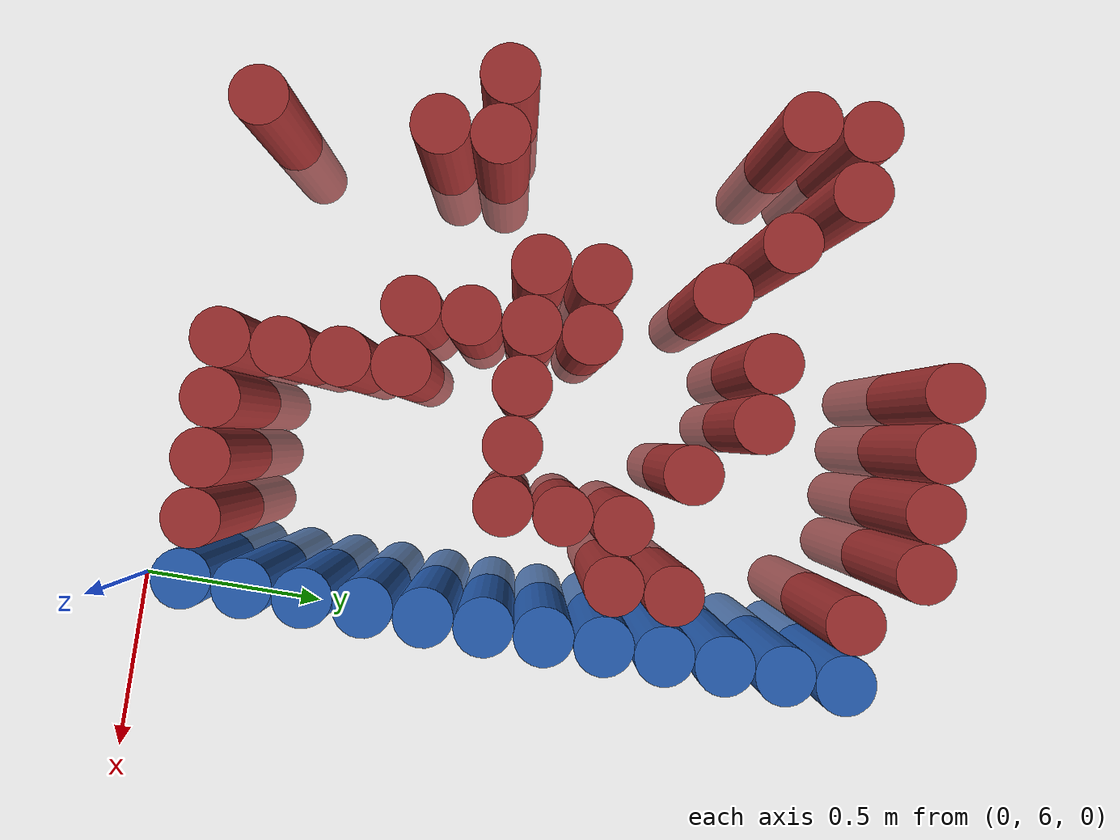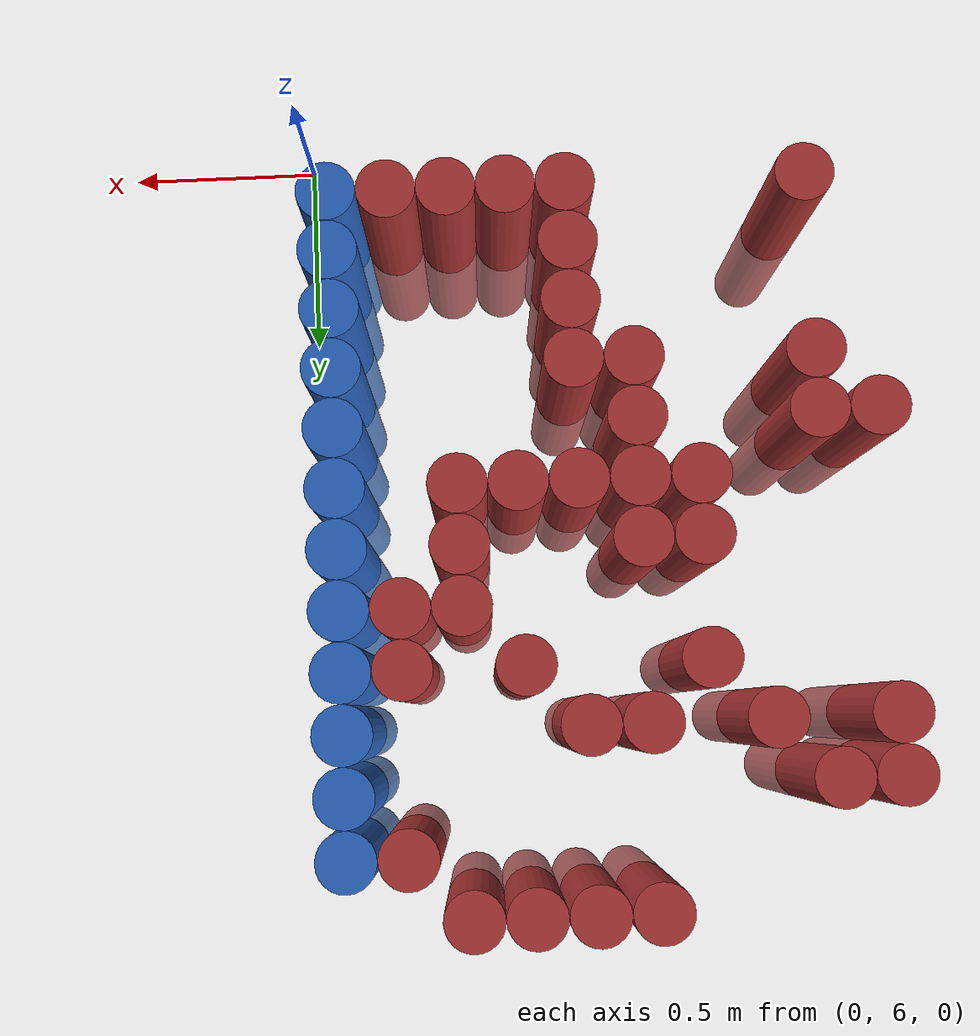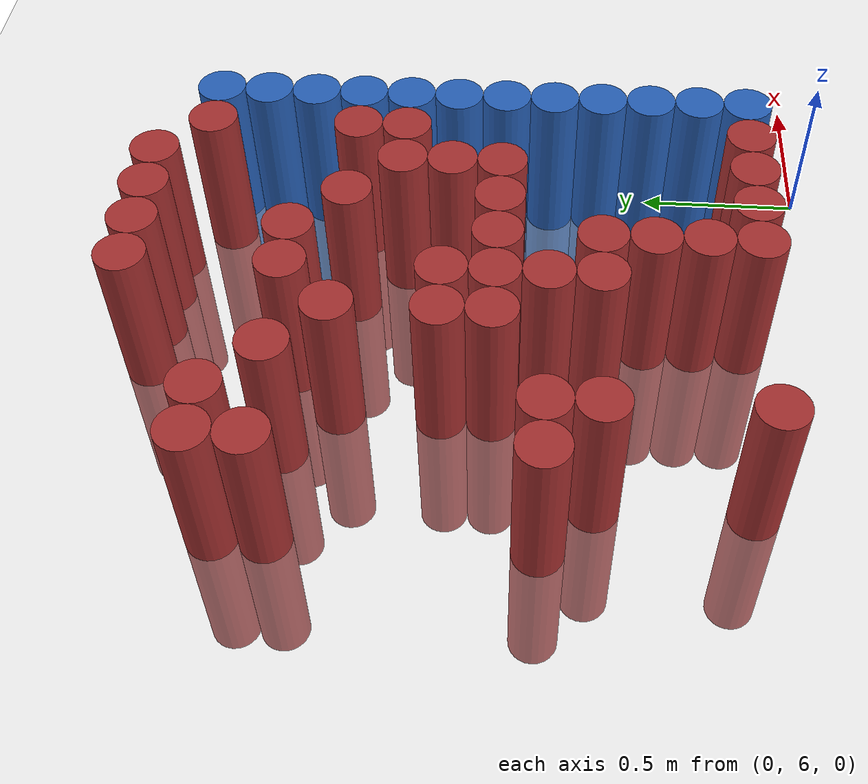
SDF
<sdf version="1.6">
 <world name="default">
  <model name="ground_plane">
   <static>1</static>
   <link name="link">
    <collision name="collision">
     <geometry><plane><normal>0 0 1</normal><size>100 100</size></plane></geometry>
     <surface><friction><ode><mu>100</mu><mu2>50</mu2></ode></friction></surface>
    </collision>
    <visual name="visual">
     <cast_shadows>0</cast_shadows>
     <geometry><plane><normal>0 0 1</normal><size>100 100</size></plane></geometry>
     <material>
      <script><uri>file://media/materials/scripts/gazebo.material</uri><name>Gazebo/Grey</name></script>
     </material>
    </visual>
   </link>
  </model>
  <model name="unit_cylinder_231">
   <static>1</static>
   <pose>-1.425000 6.825000 0.000000 0.000000 0.000000 0.000000</pose>
   <link name="link">
    <inertial>
     <mass>1</mass>
     <inertia><ixx>0.145833</ixx><ixy>0</ixy><ixz>0</ixz><iyy>0.145833</iyy><iyz>0</iyz><izz>0.125</izz></inertia>
    </inertial>
    <collision name="collision">
     <geometry><cylinder><radius>0.075000</radius><length>1</length></cylinder></geometry>
    </collision>
    <visual name="visual">
     <geometry><cylinder><radius>0.075000</radius><length>1</length></cylinder></geometry>
     <material>
      <ambient>0.648000 0.192000 0.192000 1</ambient>
      <diffuse>0.648000 0.192000 0.192000 1</diffuse>
     </material>
     <material>
      <script><name>Gazebo/Grey</name><uri>file://media/materials/scripts/gazebo.material</uri></script>
     </material>
    </visual>
   </link>
  </model>
  <model name="unit_cylinder_232">
   <static>1</static>
   <pose>-1.425000 7.575000 0.000000 0.000000 0.000000 0.000000</pose>
   <link name="link">
    <inertial>
     <mass>1</mass>
     <inertia><ixx>0.145833</ixx><ixy>0</ixy><ixz>0</ixz><iyy>0.145833</iyy><iyz>0</iyz><izz>0.125</izz></inertia>
    </inertial>
    <collision name="collision">
     <geometry><cylinder><radius>0.075000</radius><length>1</length></cylinder></geometry>
    </collision>
    <visual name="visual">
     <geometry><cylinder><radius>0.075000</radius><length>1</length></cylinder></geometry>
     <material>
      <ambient>0.648000 0.192000 0.192000 1</ambient>
      <diffuse>0.648000 0.192000 0.192000 1</diffuse>
     </material>
     <material>
      <script><name>Gazebo/Grey</name><uri>file://media/materials/scripts/gazebo.material</uri></script>
     </material>
    </visual>
   </link>
  </model>
  <model name="unit_cylinder_233">
   <static>1</static>
   <pose>-1.425000 7.725000 0.000000 0.000000 0.000000 0.000000</pose>
   <link name="link">
    <inertial>
     <mass>1</mass>
     <inertia><ixx>0.145833</ixx><ixy>0</ixy><ixz>0</ixz><iyy>0.145833</iyy><iyz>0</iyz><izz>0.125</izz></inertia>
    </inertial>
    <collision name="collision">
     <geometry><cylinder><radius>0.075000</radius><length>1</length></cylinder></geometry>
    </collision>
    <visual name="visual">
     <geometry><cylinder><radius>0.075000</radius><length>1</length></cylinder></geometry>
     <material>
      <ambient>0.648000 0.192000 0.192000 1</ambient>
      <diffuse>0.648000 0.192000 0.192000 1</diffuse>
     </material>
     <material>
      <script><name>Gazebo/Grey</name><uri>file://media/materials/scripts/gazebo.material</uri></script>
     </material>
    </visual>
   </link>
  </model>
  <model name="unit_cylinder_239">
   <static>1</static>
   <pose>-1.275000 6.225000 0.000000 0.000000 0.000000 0.000000</pose>
   <link name="link">
    <inertial>
     <mass>1</mass>
     <inertia><ixx>0.145833</ixx><ixy>0</ixy><ixz>0</ixz><iyy>0.145833</iyy><iyz>0</iyz><izz>0.125</izz></inertia>
    </inertial>
    <collision name="collision">
     <geometry><cylinder><radius>0.075000</radius><length>1</length></cylinder></geometry>
    </collision>
    <visual name="visual">
     <geometry><cylinder><radius>0.075000</radius><length>1</length></cylinder></geometry>
     <material>
      <ambient>0.648000 0.192000 0.192000 1</ambient>
      <diffuse>0.648000 0.192000 0.192000 1</diffuse>
     </material>
     <material>
      <script><name>Gazebo/Grey</name><uri>file://media/materials/scripts/gazebo.material</uri></script>
     </material>
    </visual>
   </link>
  </model>
  <model name="unit_cylinder_240">
   <static>1</static>
   <pose>-1.275000 6.675000 0.000000 0.000000 0.000000 0.000000</pose>
   <link name="link">
    <inertial>
     <mass>1</mass>
     <inertia><ixx>0.145833</ixx><ixy>0</ixy><ixz>0</ixz><iyy>0.145833</iyy><iyz>0</iyz><izz>0.125</izz></inertia>
    </inertial>
    <collision name="collision">
     <geometry><cylinder><radius>0.075000</radius><length>1</length></cylinder></geometry>
    </collision>
    <visual name="visual">
     <geometry><cylinder><radius>0.075000</radius><length>1</length></cylinder></geometry>
     <material>
      <ambient>0.648000 0.192000 0.192000 1</ambient>
      <diffuse>0.648000 0.192000 0.192000 1</diffuse>
     </material>
     <material>
      <script><name>Gazebo/Grey</name><uri>file://media/materials/scripts/gazebo.material</uri></script>
     </material>
    </visual>
   </link>
  </model>
  <model name="unit_cylinder_241">
   <static>1</static>
   <pose>-1.275000 6.825000 0.000000 0.000000 0.000000 0.000000</pose>
   <link name="link">
    <inertial>
     <mass>1</mass>
     <inertia><ixx>0.145833</ixx><ixy>0</ixy><ixz>0</ixz><iyy>0.145833</iyy><iyz>0</iyz><izz>0.125</izz></inertia>
    </inertial>
    <collision name="collision">
     <geometry><cylinder><radius>0.075000</radius><length>1</length></cylinder></geometry>
    </collision>
    <visual name="visual">
     <geometry><cylinder><radius>0.075000</radius><length>1</length></cylinder></geometry>
     <material>
      <ambient>0.648000 0.192000 0.192000 1</ambient>
      <diffuse>0.648000 0.192000 0.192000 1</diffuse>
     </material>
     <material>
      <script><name>Gazebo/Grey</name><uri>file://media/materials/scripts/gazebo.material</uri></script>
     </material>
    </visual>
   </link>
  </model>
  <model name="unit_cylinder_242">
   <static>1</static>
   <pose>-1.275000 7.725000 0.000000 0.000000 0.000000 0.000000</pose>
   <link name="link">
    <inertial>
     <mass>1</mass>
     <inertia><ixx>0.145833</ixx><ixy>0</ixy><ixz>0</ixz><iyy>0.145833</iyy><iyz>0</iyz><izz>0.125</izz></inertia>
    </inertial>
    <collision name="collision">
     <geometry><cylinder><radius>0.075000</radius><length>1</length></cylinder></geometry>
    </collision>
    <visual name="visual">
     <geometry><cylinder><radius>0.075000</radius><length>1</length></cylinder></geometry>
     <material>
      <ambient>0.648000 0.192000 0.192000 1</ambient>
      <diffuse>0.648000 0.192000 0.192000 1</diffuse>
     </material>
     <material>
      <script><name>Gazebo/Grey</name><uri>file://media/materials/scripts/gazebo.material</uri></script>
     </material>
    </visual>
   </link>
  </model>
  <model name="unit_cylinder_247">
   <static>1</static>
   <pose>-1.125000 7.575000 0.000000 0.000000 0.000000 0.000000</pose>
   <link name="link">
    <inertial>
     <mass>1</mass>
     <inertia><ixx>0.145833</ixx><ixy>0</ixy><ixz>0</ixz><iyy>0.145833</iyy><iyz>0</iyz><izz>0.125</izz></inertia>
    </inertial>
    <collision name="collision">
     <geometry><cylinder><radius>0.075000</radius><length>1</length></cylinder></geometry>
    </collision>
    <visual name="visual">
     <geometry><cylinder><radius>0.075000</radius><length>1</length></cylinder></geometry>
     <material>
      <ambient>0.648000 0.192000 0.192000 1</ambient>
      <diffuse>0.648000 0.192000 0.192000 1</diffuse>
     </material>
     <material>
      <script><name>Gazebo/Grey</name><uri>file://media/materials/scripts/gazebo.material</uri></script>
     </material>
    </visual>
   </link>
  </model>
  <model name="unit_cylinder_253">
   <static>1</static>
   <pose>-0.975000 6.975000 0.000000 0.000000 0.000000 0.000000</pose>
   <link name="link">
    <inertial>
     <mass>1</mass>
     <inertia><ixx>0.145833</ixx><ixy>0</ixy><ixz>0</ixz><iyy>0.145833</iyy><iyz>0</iyz><izz>0.125</izz></inertia>
    </inertial>
    <collision name="collision">
     <geometry><cylinder><radius>0.075000</radius><length>1</length></cylinder></geometry>
    </collision>
    <visual name="visual">
     <geometry><cylinder><radius>0.075000</radius><length>1</length></cylinder></geometry>
     <material>
      <ambient>0.648000 0.192000 0.192000 1</ambient>
      <diffuse>0.648000 0.192000 0.192000 1</diffuse>
     </material>
     <material>
      <script><name>Gazebo/Grey</name><uri>file://media/materials/scripts/gazebo.material</uri></script>
     </material>
    </visual>
   </link>
  </model>
  <model name="unit_cylinder_254">
   <static>1</static>
   <pose>-0.975000 7.125000 0.000000 0.000000 0.000000 0.000000</pose>
   <link name="link">
    <inertial>
     <mass>1</mass>
     <inertia><ixx>0.145833</ixx><ixy>0</ixy><ixz>0</ixz><iyy>0.145833</iyy><iyz>0</iyz><izz>0.125</izz></inertia>
    </inertial>
    <collision name="collision">
     <geometry><cylinder><radius>0.075000</radius><length>1</length></cylinder></geometry>
    </collision>
    <visual name="visual">
     <geometry><cylinder><radius>0.075000</radius><length>1</length></cylinder></geometry>
     <material>
      <ambient>0.648000 0.192000 0.192000 1</ambient>
      <diffuse>0.648000 0.192000 0.192000 1</diffuse>
     </material>
     <material>
      <script><name>Gazebo/Grey</name><uri>file://media/materials/scripts/gazebo.material</uri></script>
     </material>
    </visual>
   </link>
  </model>
  <model name="unit_cylinder_255">
   <static>1</static>
   <pose>-0.975000 7.425000 0.000000 0.000000 0.000000 0.000000</pose>
   <link name="link">
    <inertial>
     <mass>1</mass>
     <inertia><ixx>0.145833</ixx><ixy>0</ixy><ixz>0</ixz><iyy>0.145833</iyy><iyz>0</iyz><izz>0.125</izz></inertia>
    </inertial>
    <collision name="collision">
     <geometry><cylinder><radius>0.075000</radius><length>1</length></cylinder></geometry>
    </collision>
    <visual name="visual">
     <geometry><cylinder><radius>0.075000</radius><length>1</length></cylinder></geometry>
     <material>
      <ambient>0.648000 0.192000 0.192000 1</ambient>
      <diffuse>0.648000 0.192000 0.192000 1</diffuse>
     </material>
     <material>
      <script><name>Gazebo/Grey</name><uri>file://media/materials/scripts/gazebo.material</uri></script>
     </material>
    </visual>
   </link>
  </model>
  <model name="unit_cylinder_261">
   <static>1</static>
   <pose>-0.825000 6.675000 0.000000 0.000000 0.000000 0.000000</pose>
   <link name="link">
    <inertial>
     <mass>1</mass>
     <inertia><ixx>0.145833</ixx><ixy>0</ixy><ixz>0</ixz><iyy>0.145833</iyy><iyz>0</iyz><izz>0.125</izz></inertia>
    </inertial>
    <collision name="collision">
     <geometry><cylinder><radius>0.075000</radius><length>1</length></cylinder></geometry>
    </collision>
    <visual name="visual">
     <geometry><cylinder><radius>0.075000</radius><length>1</length></cylinder></geometry>
     <material>
      <ambient>0.648000 0.192000 0.192000 1</ambient>
      <diffuse>0.648000 0.192000 0.192000 1</diffuse>
     </material>
     <material>
      <script><name>Gazebo/Grey</name><uri>file://media/materials/scripts/gazebo.material</uri></script>
     </material>
    </visual>
   </link>
  </model>
  <model name="unit_cylinder_262">
   <static>1</static>
   <pose>-0.825000 6.825000 0.000000 0.000000 0.000000 0.000000</pose>
   <link name="link">
    <inertial>
     <mass>1</mass>
     <inertia><ixx>0.145833</ixx><ixy>0</ixy><ixz>0</ixz><iyy>0.145833</iyy><iyz>0</iyz><izz>0.125</izz></inertia>
    </inertial>
    <collision name="collision">
     <geometry><cylinder><radius>0.075000</radius><length>1</length></cylinder></geometry>
    </collision>
    <visual name="visual">
     <geometry><cylinder><radius>0.075000</radius><length>1</length></cylinder></geometry>
     <material>
      <ambient>0.648000 0.192000 0.192000 1</ambient>
      <diffuse>0.648000 0.192000 0.192000 1</diffuse>
     </material>
     <material>
      <script><name>Gazebo/Grey</name><uri>file://media/materials/scripts/gazebo.material</uri></script>
     </material>
    </visual>
   </link>
  </model>
  <model name="unit_cylinder_263">
   <static>1</static>
   <pose>-0.825000 6.975000 0.000000 0.000000 0.000000 0.000000</pose>
   <link name="link">
    <inertial>
     <mass>1</mass>
     <inertia><ixx>0.145833</ixx><ixy>0</ixy><ixz>0</ixz><iyy>0.145833</iyy><iyz>0</iyz><izz>0.125</izz></inertia>
    </inertial>
    <collision name="collision">
     <geometry><cylinder><radius>0.075000</radius><length>1</length></cylinder></geometry>
    </collision>
    <visual name="visual">
     <geometry><cylinder><radius>0.075000</radius><length>1</length></cylinder></geometry>
     <material>
      <ambient>0.648000 0.192000 0.192000 1</ambient>
      <diffuse>0.648000 0.192000 0.192000 1</diffuse>
     </material>
     <material>
      <script><name>Gazebo/Grey</name><uri>file://media/materials/scripts/gazebo.material</uri></script>
     </material>
    </visual>
   </link>
  </model>
  <model name="unit_cylinder_264">
   <static>1</static>
   <pose>-0.825000 7.125000 0.000000 0.000000 0.000000 0.000000</pose>
   <link name="link">
    <inertial>
     <mass>1</mass>
     <inertia><ixx>0.145833</ixx><ixy>0</ixy><ixz>0</ixz><iyy>0.145833</iyy><iyz>0</iyz><izz>0.125</izz></inertia>
    </inertial>
    <collision name="collision">
     <geometry><cylinder><radius>0.075000</radius><length>1</length></cylinder></geometry>
    </collision>
    <visual name="visual">
     <geometry><cylinder><radius>0.075000</radius><length>1</length></cylinder></geometry>
     <material>
      <ambient>0.648000 0.192000 0.192000 1</ambient>
      <diffuse>0.648000 0.192000 0.192000 1</diffuse>
     </material>
     <material>
      <script><name>Gazebo/Grey</name><uri>file://media/materials/scripts/gazebo.material</uri></script>
     </material>
    </visual>
   </link>
  </model>
  <model name="unit_cylinder_265">
   <static>1</static>
   <pose>-0.825000 7.575000 0.000000 0.000000 0.000000 0.000000</pose>
   <link name="link">
    <inertial>
     <mass>1</mass>
     <inertia><ixx>0.145833</ixx><ixy>0</ixy><ixz>0</ixz><iyy>0.145833</iyy><iyz>0</iyz><izz>0.125</izz></inertia>
    </inertial>
    <collision name="collision">
     <geometry><cylinder><radius>0.075000</radius><length>1</length></cylinder></geometry>
    </collision>
    <visual name="visual">
     <geometry><cylinder><radius>0.075000</radius><length>1</length></cylinder></geometry>
     <material>
      <ambient>0.648000 0.192000 0.192000 1</ambient>
      <diffuse>0.648000 0.192000 0.192000 1</diffuse>
     </material>
     <material>
      <script><name>Gazebo/Grey</name><uri>file://media/materials/scripts/gazebo.material</uri></script>
     </material>
    </visual>
   </link>
  </model>
  <model name="unit_cylinder_266">
   <static>1</static>
   <pose>-0.825000 8.025000 0.000000 0.000000 0.000000 0.000000</pose>
   <link name="link">
    <inertial>
     <mass>1</mass>
     <inertia><ixx>0.145833</ixx><ixy>0</ixy><ixz>0</ixz><iyy>0.145833</iyy><iyz>0</iyz><izz>0.125</izz></inertia>
    </inertial>
    <collision name="collision">
     <geometry><cylinder><radius>0.075000</radius><length>1</length></cylinder></geometry>
    </collision>
    <visual name="visual">
     <geometry><cylinder><radius>0.075000</radius><length>1</length></cylinder></geometry>
     <material>
      <ambient>0.648000 0.192000 0.192000 1</ambient>
      <diffuse>0.648000 0.192000 0.192000 1</diffuse>
     </material>
     <material>
      <script><name>Gazebo/Grey</name><uri>file://media/materials/scripts/gazebo.material</uri></script>
     </material>
    </visual>
   </link>
  </model>
  <model name="unit_cylinder_275">
   <static>1</static>
   <pose>-0.675000 6.225000 0.000000 0.000000 0.000000 0.000000</pose>
   <link name="link">
    <inertial>
     <mass>1</mass>
     <inertia><ixx>0.145833</ixx><ixy>0</ixy><ixz>0</ixz><iyy>0.145833</iyy><iyz>0</iyz><izz>0.125</izz></inertia>
    </inertial>
    <collision name="collision">
     <geometry><cylinder><radius>0.075000</radius><length>1</length></cylinder></geometry>
    </collision>
    <visual name="visual">
     <geometry><cylinder><radius>0.075000</radius><length>1</length></cylinder></geometry>
     <material>
      <ambient>0.648000 0.192000 0.192000 1</ambient>
      <diffuse>0.648000 0.192000 0.192000 1</diffuse>
     </material>
     <material>
      <script><name>Gazebo/Grey</name><uri>file://media/materials/scripts/gazebo.material</uri></script>
     </material>
    </visual>
   </link>
  </model>
  <model name="unit_cylinder_276">
   <static>1</static>
   <pose>-0.675000 6.375000 0.000000 0.000000 0.000000 0.000000</pose>
   <link name="link">
    <inertial>
     <mass>1</mass>
     <inertia><ixx>0.145833</ixx><ixy>0</ixy><ixz>0</ixz><iyy>0.145833</iyy><iyz>0</iyz><izz>0.125</izz></inertia>
    </inertial>
    <collision name="collision">
     <geometry><cylinder><radius>0.075000</radius><length>1</length></cylinder></geometry>
    </collision>
    <visual name="visual">
     <geometry><cylinder><radius>0.075000</radius><length>1</length></cylinder></geometry>
     <material>
      <ambient>0.648000 0.192000 0.192000 1</ambient>
      <diffuse>0.648000 0.192000 0.192000 1</diffuse>
     </material>
     <material>
      <script><name>Gazebo/Grey</name><uri>file://media/materials/scripts/gazebo.material</uri></script>
     </material>
    </visual>
   </link>
  </model>
  <model name="unit_cylinder_277">
   <static>1</static>
   <pose>-0.675000 6.525000 0.000000 0.000000 0.000000 0.000000</pose>
   <link name="link">
    <inertial>
     <mass>1</mass>
     <inertia><ixx>0.145833</ixx><ixy>0</ixy><ixz>0</ixz><iyy>0.145833</iyy><iyz>0</iyz><izz>0.125</izz></inertia>
    </inertial>
    <collision name="collision">
     <geometry><cylinder><radius>0.075000</radius><length>1</length></cylinder></geometry>
    </collision>
    <visual name="visual">
     <geometry><cylinder><radius>0.075000</radius><length>1</length></cylinder></geometry>
     <material>
      <ambient>0.648000 0.192000 0.192000 1</ambient>
      <diffuse>0.648000 0.192000 0.192000 1</diffuse>
     </material>
     <material>
      <script><name>Gazebo/Grey</name><uri>file://media/materials/scripts/gazebo.material</uri></script>
     </material>
    </visual>
   </link>
  </model>
  <model name="unit_cylinder_278">
   <static>1</static>
   <pose>-0.675000 6.675000 0.000000 0.000000 0.000000 0.000000</pose>
   <link name="link">
    <inertial>
     <mass>1</mass>
     <inertia><ixx>0.145833</ixx><ixy>0</ixy><ixz>0</ixz><iyy>0.145833</iyy><iyz>0</iyz><izz>0.125</izz></inertia>
    </inertial>
    <collision name="collision">
     <geometry><cylinder><radius>0.075000</radius><length>1</length></cylinder></geometry>
    </collision>
    <visual name="visual">
     <geometry><cylinder><radius>0.075000</radius><length>1</length></cylinder></geometry>
     <material>
      <ambient>0.648000 0.192000 0.192000 1</ambient>
      <diffuse>0.648000 0.192000 0.192000 1</diffuse>
     </material>
     <material>
      <script><name>Gazebo/Grey</name><uri>file://media/materials/scripts/gazebo.material</uri></script>
     </material>
    </visual>
   </link>
  </model>
  <model name="unit_cylinder_279">
   <static>1</static>
   <pose>-0.675000 6.975000 0.000000 0.000000 0.000000 0.000000</pose>
   <link name="link">
    <inertial>
     <mass>1</mass>
     <inertia><ixx>0.145833</ixx><ixy>0</ixy><ixz>0</ixz><iyy>0.145833</iyy><iyz>0</iyz><izz>0.125</izz></inertia>
    </inertial>
    <collision name="collision">
     <geometry><cylinder><radius>0.075000</radius><length>1</length></cylinder></geometry>
    </collision>
    <visual name="visual">
     <geometry><cylinder><radius>0.075000</radius><length>1</length></cylinder></geometry>
     <material>
      <ambient>0.648000 0.192000 0.192000 1</ambient>
      <diffuse>0.648000 0.192000 0.192000 1</diffuse>
     </material>
     <material>
      <script><name>Gazebo/Grey</name><uri>file://media/materials/scripts/gazebo.material</uri></script>
     </material>
    </visual>
   </link>
  </model>
  <model name="unit_cylinder_280">
   <static>1</static>
   <pose>-0.675000 7.575000 0.000000 0.000000 0.000000 0.000000</pose>
   <link name="link">
    <inertial>
     <mass>1</mass>
     <inertia><ixx>0.145833</ixx><ixy>0</ixy><ixz>0</ixz><iyy>0.145833</iyy><iyz>0</iyz><izz>0.125</izz></inertia>
    </inertial>
    <collision name="collision">
     <geometry><cylinder><radius>0.075000</radius><length>1</length></cylinder></geometry>
    </collision>
    <visual name="visual">
     <geometry><cylinder><radius>0.075000</radius><length>1</length></cylinder></geometry>
     <material>
      <ambient>0.648000 0.192000 0.192000 1</ambient>
      <diffuse>0.648000 0.192000 0.192000 1</diffuse>
     </material>
     <material>
      <script><name>Gazebo/Grey</name><uri>file://media/materials/scripts/gazebo.material</uri></script>
     </material>
    </visual>
   </link>
  </model>
  <model name="unit_cylinder_281">
   <static>1</static>
   <pose>-0.675000 8.025000 0.000000 0.000000 0.000000 0.000000</pose>
   <link name="link">
    <inertial>
     <mass>1</mass>
     <inertia><ixx>0.145833</ixx><ixy>0</ixy><ixz>0</ixz><iyy>0.145833</iyy><iyz>0</iyz><izz>0.125</izz></inertia>
    </inertial>
    <collision name="collision">
     <geometry><cylinder><radius>0.075000</radius><length>1</length></cylinder></geometry>
    </collision>
    <visual name="visual">
     <geometry><cylinder><radius>0.075000</radius><length>1</length></cylinder></geometry>
     <material>
      <ambient>0.648000 0.192000 0.192000 1</ambient>
      <diffuse>0.648000 0.192000 0.192000 1</diffuse>
     </material>
     <material>
      <script><name>Gazebo/Grey</name><uri>file://media/materials/scripts/gazebo.material</uri></script>
     </material>
    </visual>
   </link>
  </model>
  <model name="unit_cylinder_290">
   <static>1</static>
   <pose>-0.525000 6.225000 0.000000 0.000000 0.000000 0.000000</pose>
   <link name="link">
    <inertial>
     <mass>1</mass>
     <inertia><ixx>0.145833</ixx><ixy>0</ixy><ixz>0</ixz><iyy>0.145833</iyy><iyz>0</iyz><izz>0.125</izz></inertia>
    </inertial>
    <collision name="collision">
     <geometry><cylinder><radius>0.075000</radius><length>1</length></cylinder></geometry>
    </collision>
    <visual name="visual">
     <geometry><cylinder><radius>0.075000</radius><length>1</length></cylinder></geometry>
     <material>
      <ambient>0.648000 0.192000 0.192000 1</ambient>
      <diffuse>0.648000 0.192000 0.192000 1</diffuse>
     </material>
     <material>
      <script><name>Gazebo/Grey</name><uri>file://media/materials/scripts/gazebo.material</uri></script>
     </material>
    </visual>
   </link>
  </model>
  <model name="unit_cylinder_291">
   <static>1</static>
   <pose>-0.525000 6.975000 0.000000 0.000000 0.000000 0.000000</pose>
   <link name="link">
    <inertial>
     <mass>1</mass>
     <inertia><ixx>0.145833</ixx><ixy>0</ixy><ixz>0</ixz><iyy>0.145833</iyy><iyz>0</iyz><izz>0.125</izz></inertia>
    </inertial>
    <collision name="collision">
     <geometry><cylinder><radius>0.075000</radius><length>1</length></cylinder></geometry>
    </collision>
    <visual name="visual">
     <geometry><cylinder><radius>0.075000</radius><length>1</length></cylinder></geometry>
     <material>
      <ambient>0.648000 0.192000 0.192000 1</ambient>
      <diffuse>0.648000 0.192000 0.192000 1</diffuse>
     </material>
     <material>
      <script><name>Gazebo/Grey</name><uri>file://media/materials/scripts/gazebo.material</uri></script>
     </material>
    </visual>
   </link>
  </model>
  <model name="unit_cylinder_292">
   <static>1</static>
   <pose>-0.525000 7.425000 0.000000 0.000000 0.000000 0.000000</pose>
   <link name="link">
    <inertial>
     <mass>1</mass>
     <inertia><ixx>0.145833</ixx><ixy>0</ixy><ixz>0</ixz><iyy>0.145833</iyy><iyz>0</iyz><izz>0.125</izz></inertia>
    </inertial>
    <collision name="collision">
     <geometry><cylinder><radius>0.075000</radius><length>1</length></cylinder></geometry>
    </collision>
    <visual name="visual">
     <geometry><cylinder><radius>0.075000</radius><length>1</length></cylinder></geometry>
     <material>
      <ambient>0.648000 0.192000 0.192000 1</ambient>
      <diffuse>0.648000 0.192000 0.192000 1</diffuse>
     </material>
     <material>
      <script><name>Gazebo/Grey</name><uri>file://media/materials/scripts/gazebo.material</uri></script>
     </material>
    </visual>
   </link>
  </model>
  <model name="unit_cylinder_293">
   <static>1</static>
   <pose>-0.525000 8.025000 0.000000 0.000000 0.000000 0.000000</pose>
   <link name="link">
    <inertial>
     <mass>1</mass>
     <inertia><ixx>0.145833</ixx><ixy>0</ixy><ixz>0</ixz><iyy>0.145833</iyy><iyz>0</iyz><izz>0.125</izz></inertia>
    </inertial>
    <collision name="collision">
     <geometry><cylinder><radius>0.075000</radius><length>1</length></cylinder></geometry>
    </collision>
    <visual name="visual">
     <geometry><cylinder><radius>0.075000</radius><length>1</length></cylinder></geometry>
     <material>
      <ambient>0.648000 0.192000 0.192000 1</ambient>
      <diffuse>0.648000 0.192000 0.192000 1</diffuse>
     </material>
     <material>
      <script><name>Gazebo/Grey</name><uri>file://media/materials/scripts/gazebo.material</uri></script>
     </material>
    </visual>
   </link>
  </model>
  <model name="unit_cylinder_298">
   <static>1</static>
   <pose>-0.375000 6.225000 0.000000 0.000000 0.000000 0.000000</pose>
   <link name="link">
    <inertial>
     <mass>1</mass>
     <inertia><ixx>0.145833</ixx><ixy>0</ixy><ixz>0</ixz><iyy>0.145833</iyy><iyz>0</iyz><izz>0.125</izz></inertia>
    </inertial>
    <collision name="collision">
     <geometry><cylinder><radius>0.075000</radius><length>1</length></cylinder></geometry>
    </collision>
    <visual name="visual">
     <geometry><cylinder><radius>0.075000</radius><length>1</length></cylinder></geometry>
     <material>
      <ambient>0.648000 0.192000 0.192000 1</ambient>
      <diffuse>0.648000 0.192000 0.192000 1</diffuse>
     </material>
     <material>
      <script><name>Gazebo/Grey</name><uri>file://media/materials/scripts/gazebo.material</uri></script>
     </material>
    </visual>
   </link>
  </model>
  <model name="unit_cylinder_299">
   <static>1</static>
   <pose>-0.375000 6.975000 0.000000 0.000000 0.000000 0.000000</pose>
   <link name="link">
    <inertial>
     <mass>1</mass>
     <inertia><ixx>0.145833</ixx><ixy>0</ixy><ixz>0</ixz><iyy>0.145833</iyy><iyz>0</iyz><izz>0.125</izz></inertia>
    </inertial>
    <collision name="collision">
     <geometry><cylinder><radius>0.075000</radius><length>1</length></cylinder></geometry>
    </collision>
    <visual name="visual">
     <geometry><cylinder><radius>0.075000</radius><length>1</length></cylinder></geometry>
     <material>
      <ambient>0.648000 0.192000 0.192000 1</ambient>
      <diffuse>0.648000 0.192000 0.192000 1</diffuse>
     </material>
     <material>
      <script><name>Gazebo/Grey</name><uri>file://media/materials/scripts/gazebo.material</uri></script>
     </material>
    </visual>
   </link>
  </model>
  <model name="unit_cylinder_300">
   <static>1</static>
   <pose>-0.375000 7.125000 0.000000 0.000000 0.000000 0.000000</pose>
   <link name="link">
    <inertial>
     <mass>1</mass>
     <inertia><ixx>0.145833</ixx><ixy>0</ixy><ixz>0</ixz><iyy>0.145833</iyy><iyz>0</iyz><izz>0.125</izz></inertia>
    </inertial>
    <collision name="collision">
     <geometry><cylinder><radius>0.075000</radius><length>1</length></cylinder></geometry>
    </collision>
    <visual name="visual">
     <geometry><cylinder><radius>0.075000</radius><length>1</length></cylinder></geometry>
     <material>
      <ambient>0.648000 0.192000 0.192000 1</ambient>
      <diffuse>0.648000 0.192000 0.192000 1</diffuse>
     </material>
     <material>
      <script><name>Gazebo/Grey</name><uri>file://media/materials/scripts/gazebo.material</uri></script>
     </material>
    </visual>
   </link>
  </model>
  <model name="unit_cylinder_301">
   <static>1</static>
   <pose>-0.375000 7.275000 0.000000 0.000000 0.000000 0.000000</pose>
   <link name="link">
    <inertial>
     <mass>1</mass>
     <inertia><ixx>0.145833</ixx><ixy>0</ixy><ixz>0</ixz><iyy>0.145833</iyy><iyz>0</iyz><izz>0.125</izz></inertia>
    </inertial>
    <collision name="collision">
     <geometry><cylinder><radius>0.075000</radius><length>1</length></cylinder></geometry>
    </collision>
    <visual name="visual">
     <geometry><cylinder><radius>0.075000</radius><length>1</length></cylinder></geometry>
     <material>
      <ambient>0.648000 0.192000 0.192000 1</ambient>
      <diffuse>0.648000 0.192000 0.192000 1</diffuse>
     </material>
     <material>
      <script><name>Gazebo/Grey</name><uri>file://media/materials/scripts/gazebo.material</uri></script>
     </material>
    </visual>
   </link>
  </model>
  <model name="unit_cylinder_302">
   <static>1</static>
   <pose>-0.375000 8.025000 0.000000 0.000000 0.000000 0.000000</pose>
   <link name="link">
    <inertial>
     <mass>1</mass>
     <inertia><ixx>0.145833</ixx><ixy>0</ixy><ixz>0</ixz><iyy>0.145833</iyy><iyz>0</iyz><izz>0.125</izz></inertia>
    </inertial>
    <collision name="collision">
     <geometry><cylinder><radius>0.075000</radius><length>1</length></cylinder></geometry>
    </collision>
    <visual name="visual">
     <geometry><cylinder><radius>0.075000</radius><length>1</length></cylinder></geometry>
     <material>
      <ambient>0.648000 0.192000 0.192000 1</ambient>
      <diffuse>0.648000 0.192000 0.192000 1</diffuse>
     </material>
     <material>
      <script><name>Gazebo/Grey</name><uri>file://media/materials/scripts/gazebo.material</uri></script>
     </material>
    </visual>
   </link>
  </model>
  <model name="unit_cylinder_308">
   <static>1</static>
   <pose>-0.225000 6.225000 0.000000 0.000000 0.000000 0.000000</pose>
   <link name="link">
    <inertial>
     <mass>1</mass>
     <inertia><ixx>0.145833</ixx><ixy>0</ixy><ixz>0</ixz><iyy>0.145833</iyy><iyz>0</iyz><izz>0.125</izz></inertia>
    </inertial>
    <collision name="collision">
     <geometry><cylinder><radius>0.075000</radius><length>1</length></cylinder></geometry>
    </collision>
    <visual name="visual">
     <geometry><cylinder><radius>0.075000</radius><length>1</length></cylinder></geometry>
     <material>
      <ambient>0.648000 0.192000 0.192000 1</ambient>
      <diffuse>0.648000 0.192000 0.192000 1</diffuse>
     </material>
     <material>
      <script><name>Gazebo/Grey</name><uri>file://media/materials/scripts/gazebo.material</uri></script>
     </material>
    </visual>
   </link>
  </model>
  <model name="unit_cylinder_309">
   <static>1</static>
   <pose>-0.225000 7.275000 0.000000 0.000000 0.000000 0.000000</pose>
   <link name="link">
    <inertial>
     <mass>1</mass>
     <inertia><ixx>0.145833</ixx><ixy>0</ixy><ixz>0</ixz><iyy>0.145833</iyy><iyz>0</iyz><izz>0.125</izz></inertia>
    </inertial>
    <collision name="collision">
     <geometry><cylinder><radius>0.075000</radius><length>1</length></cylinder></geometry>
    </collision>
    <visual name="visual">
     <geometry><cylinder><radius>0.075000</radius><length>1</length></cylinder></geometry>
     <material>
      <ambient>0.648000 0.192000 0.192000 1</ambient>
      <diffuse>0.648000 0.192000 0.192000 1</diffuse>
     </material>
     <material>
      <script><name>Gazebo/Grey</name><uri>file://media/materials/scripts/gazebo.material</uri></script>
     </material>
    </visual>
   </link>
  </model>
  <model name="unit_cylinder_310">
   <static>1</static>
   <pose>-0.225000 7.425000 0.000000 0.000000 0.000000 0.000000</pose>
   <link name="link">
    <inertial>
     <mass>1</mass>
     <inertia><ixx>0.145833</ixx><ixy>0</ixy><ixz>0</ixz><iyy>0.145833</iyy><iyz>0</iyz><izz>0.125</izz></inertia>
    </inertial>
    <collision name="collision">
     <geometry><cylinder><radius>0.075000</radius><length>1</length></cylinder></geometry>
    </collision>
    <visual name="visual">
     <geometry><cylinder><radius>0.075000</radius><length>1</length></cylinder></geometry>
     <material>
      <ambient>0.648000 0.192000 0.192000 1</ambient>
      <diffuse>0.648000 0.192000 0.192000 1</diffuse>
     </material>
     <material>
      <script><name>Gazebo/Grey</name><uri>file://media/materials/scripts/gazebo.material</uri></script>
     </material>
    </visual>
   </link>
  </model>
  <model name="unit_cylinder_311">
   <static>1</static>
   <pose>-0.225000 7.875000 0.000000 0.000000 0.000000 0.000000</pose>
   <link name="link">
    <inertial>
     <mass>1</mass>
     <inertia><ixx>0.145833</ixx><ixy>0</ixy><ixz>0</ixz><iyy>0.145833</iyy><iyz>0</iyz><izz>0.125</izz></inertia>
    </inertial>
    <collision name="collision">
     <geometry><cylinder><radius>0.075000</radius><length>1</length></cylinder></geometry>
    </collision>
    <visual name="visual">
     <geometry><cylinder><radius>0.075000</radius><length>1</length></cylinder></geometry>
     <material>
      <ambient>0.648000 0.192000 0.192000 1</ambient>
      <diffuse>0.648000 0.192000 0.192000 1</diffuse>
     </material>
     <material>
      <script><name>Gazebo/Grey</name><uri>file://media/materials/scripts/gazebo.material</uri></script>
     </material>
    </visual>
   </link>
  </model>
  <model name="unit_cylinder_321">
   <static>1</static>
   <pose>-0.075000 6.225000 0.000000 0.000000 0.000000 0.000000</pose>
   <link name="link">
    <inertial>
     <mass>1</mass>
     <inertia><ixx>0.145833</ixx><ixy>0</ixy><ixz>0</ixz><iyy>0.145833</iyy><iyz>0</iyz><izz>0.125</izz></inertia>
    </inertial>
    <collision name="collision">
     <geometry><cylinder><radius>0.075000</radius><length>1</length></cylinder></geometry>
    </collision>
    <visual name="visual">
     <geometry><cylinder><radius>0.075000</radius><length>1</length></cylinder></geometry>
     <material>
      <ambient>0.152000 0.379000 0.720000 1</ambient>
      <diffuse>0.152000 0.379000 0.720000 1</diffuse>
     </material>
     <material>
      <script><name>Gazebo/Grey</name><uri>file://media/materials/scripts/gazebo.material</uri></script>
     </material>
    </visual>
   </link>
  </model>
  <model name="unit_cylinder_322">
   <static>1</static>
   <pose>-0.075000 6.375000 0.000000 0.000000 0.000000 0.000000</pose>
   <link name="link">
    <inertial>
     <mass>1</mass>
     <inertia><ixx>0.145833</ixx><ixy>0</ixy><ixz>0</ixz><iyy>0.145833</iyy><iyz>0</iyz><izz>0.125</izz></inertia>
    </inertial>
    <collision name="collision">
     <geometry><cylinder><radius>0.075000</radius><length>1</length></cylinder></geometry>
    </collision>
    <visual name="visual">
     <geometry><cylinder><radius>0.075000</radius><length>1</length></cylinder></geometry>
     <material>
      <ambient>0.152000 0.379000 0.720000 1</ambient>
      <diffuse>0.152000 0.379000 0.720000 1</diffuse>
     </material>
     <material>
      <script><name>Gazebo/Grey</name><uri>file://media/materials/scripts/gazebo.material</uri></script>
     </material>
    </visual>
   </link>
  </model>
  <model name="unit_cylinder_323">
   <static>1</static>
   <pose>-0.075000 6.525000 0.000000 0.000000 0.000000 0.000000</pose>
   <link name="link">
    <inertial>
     <mass>1</mass>
     <inertia><ixx>0.145833</ixx><ixy>0</ixy><ixz>0</ixz><iyy>0.145833</iyy><iyz>0</iyz><izz>0.125</izz></inertia>
    </inertial>
    <collision name="collision">
     <geometry><cylinder><radius>0.075000</radius><length>1</length></cylinder></geometry>
    </collision>
    <visual name="visual">
     <geometry><cylinder><radius>0.075000</radius><length>1</length></cylinder></geometry>
     <material>
      <ambient>0.152000 0.379000 0.720000 1</ambient>
      <diffuse>0.152000 0.379000 0.720000 1</diffuse>
     </material>
     <material>
      <script><name>Gazebo/Grey</name><uri>file://media/materials/scripts/gazebo.material</uri></script>
     </material>
    </visual>
   </link>
  </model>
  <model name="unit_cylinder_324">
   <static>1</static>
   <pose>-0.075000 6.675000 0.000000 0.000000 0.000000 0.000000</pose>
   <link name="link">
    <inertial>
     <mass>1</mass>
     <inertia><ixx>0.145833</ixx><ixy>0</ixy><ixz>0</ixz><iyy>0.145833</iyy><iyz>0</iyz><izz>0.125</izz></inertia>
    </inertial>
    <collision name="collision">
     <geometry><cylinder><radius>0.075000</radius><length>1</length></cylinder></geometry>
    </collision>
    <visual name="visual">
     <geometry><cylinder><radius>0.075000</radius><length>1</length></cylinder></geometry>
     <material>
      <ambient>0.152000 0.379000 0.720000 1</ambient>
      <diffuse>0.152000 0.379000 0.720000 1</diffuse>
     </material>
     <material>
      <script><name>Gazebo/Grey</name><uri>file://media/materials/scripts/gazebo.material</uri></script>
     </material>
    </visual>
   </link>
  </model>
  <model name="unit_cylinder_325">
   <static>1</static>
   <pose>-0.075000 6.825000 0.000000 0.000000 0.000000 0.000000</pose>
   <link name="link">
    <inertial>
     <mass>1</mass>
     <inertia><ixx>0.145833</ixx><ixy>0</ixy><ixz>0</ixz><iyy>0.145833</iyy><iyz>0</iyz><izz>0.125</izz></inertia>
    </inertial>
    <collision name="collision">
     <geometry><cylinder><radius>0.075000</radius><length>1</length></cylinder></geometry>
    </collision>
    <visual name="visual">
     <geometry><cylinder><radius>0.075000</radius><length>1</length></cylinder></geometry>
     <material>
      <ambient>0.152000 0.379000 0.720000 1</ambient>
      <diffuse>0.152000 0.379000 0.720000 1</diffuse>
     </material>
     <material>
      <script><name>Gazebo/Grey</name><uri>file://media/materials/scripts/gazebo.material</uri></script>
     </material>
    </visual>
   </link>
  </model>
  <model name="unit_cylinder_326">
   <static>1</static>
   <pose>-0.075000 6.975000 0.000000 0.000000 0.000000 0.000000</pose>
   <link name="link">
    <inertial>
     <mass>1</mass>
     <inertia><ixx>0.145833</ixx><ixy>0</ixy><ixz>0</ixz><iyy>0.145833</iyy><iyz>0</iyz><izz>0.125</izz></inertia>
    </inertial>
    <collision name="collision">
     <geometry><cylinder><radius>0.075000</radius><length>1</length></cylinder></geometry>
    </collision>
    <visual name="visual">
     <geometry><cylinder><radius>0.075000</radius><length>1</length></cylinder></geometry>
     <material>
      <ambient>0.152000 0.379000 0.720000 1</ambient>
      <diffuse>0.152000 0.379000 0.720000 1</diffuse>
     </material>
     <material>
      <script><name>Gazebo/Grey</name><uri>file://media/materials/scripts/gazebo.material</uri></script>
     </material>
    </visual>
   </link>
  </model>
  <model name="unit_cylinder_327">
   <static>1</static>
   <pose>-0.075000 7.125000 0.000000 0.000000 0.000000 0.000000</pose>
   <link name="link">
    <inertial>
     <mass>1</mass>
     <inertia><ixx>0.145833</ixx><ixy>0</ixy><ixz>0</ixz><iyy>0.145833</iyy><iyz>0</iyz><izz>0.125</izz></inertia>
    </inertial>
    <collision name="collision">
     <geometry><cylinder><radius>0.075000</radius><length>1</length></cylinder></geometry>
    </collision>
    <visual name="visual">
     <geometry><cylinder><radius>0.075000</radius><length>1</length></cylinder></geometry>
     <material>
      <ambient>0.152000 0.379000 0.720000 1</ambient>
      <diffuse>0.152000 0.379000 0.720000 1</diffuse>
     </material>
     <material>
      <script><name>Gazebo/Grey</name><uri>file://media/materials/scripts/gazebo.material</uri></script>
     </material>
    </visual>
   </link>
  </model>
  <model name="unit_cylinder_328">
   <static>1</static>
   <pose>-0.075000 7.275000 0.000000 0.000000 0.000000 0.000000</pose>
   <link name="link">
    <inertial>
     <mass>1</mass>
     <inertia><ixx>0.145833</ixx><ixy>0</ixy><ixz>0</ixz><iyy>0.145833</iyy><iyz>0</iyz><izz>0.125</izz></inertia>
    </inertial>
    <collision name="collision">
     <geometry><cylinder><radius>0.075000</radius><length>1</length></cylinder></geometry>
    </collision>
    <visual name="visual">
     <geometry><cylinder><radius>0.075000</radius><length>1</length></cylinder></geometry>
     <material>
      <ambient>0.152000 0.379000 0.720000 1</ambient>
      <diffuse>0.152000 0.379000 0.720000 1</diffuse>
     </material>
     <material>
      <script><name>Gazebo/Grey</name><uri>file://media/materials/scripts/gazebo.material</uri></script>
     </material>
    </visual>
   </link>
  </model>
  <model name="unit_cylinder_329">
   <static>1</static>
   <pose>-0.075000 7.425000 0.000000 0.000000 0.000000 0.000000</pose>
   <link name="link">
    <inertial>
     <mass>1</mass>
     <inertia><ixx>0.145833</ixx><ixy>0</ixy><ixz>0</ixz><iyy>0.145833</iyy><iyz>0</iyz><izz>0.125</izz></inertia>
    </inertial>
    <collision name="collision">
     <geometry><cylinder><radius>0.075000</radius><length>1</length></cylinder></geometry>
    </collision>
    <visual name="visual">
     <geometry><cylinder><radius>0.075000</radius><length>1</length></cylinder></geometry>
     <material>
      <ambient>0.152000 0.379000 0.720000 1</ambient>
      <diffuse>0.152000 0.379000 0.720000 1</diffuse>
     </material>
     <material>
      <script><name>Gazebo/Grey</name><uri>file://media/materials/scripts/gazebo.material</uri></script>
     </material>
    </visual>
   </link>
  </model>
  <model name="unit_cylinder_330">
   <static>1</static>
   <pose>-0.075000 7.575000 0.000000 0.000000 0.000000 0.000000</pose>
   <link name="link">
    <inertial>
     <mass>1</mass>
     <inertia><ixx>0.145833</ixx><ixy>0</ixy><ixz>0</ixz><iyy>0.145833</iyy><iyz>0</iyz><izz>0.125</izz></inertia>
    </inertial>
    <collision name="collision">
     <geometry><cylinder><radius>0.075000</radius><length>1</length></cylinder></geometry>
    </collision>
    <visual name="visual">
     <geometry><cylinder><radius>0.075000</radius><length>1</length></cylinder></geometry>
     <material>
      <ambient>0.152000 0.379000 0.720000 1</ambient>
      <diffuse>0.152000 0.379000 0.720000 1</diffuse>
     </material>
     <material>
      <script><name>Gazebo/Grey</name><uri>file://media/materials/scripts/gazebo.material</uri></script>
     </material>
    </visual>
   </link>
  </model>
  <model name="unit_cylinder_331">
   <static>1</static>
   <pose>-0.075000 7.725000 0.000000 0.000000 0.000000 0.000000</pose>
   <link name="link">
    <inertial>
     <mass>1</mass>
     <inertia><ixx>0.145833</ixx><ixy>0</ixy><ixz>0</ixz><iyy>0.145833</iyy><iyz>0</iyz><izz>0.125</izz></inertia>
    </inertial>
    <collision name="collision">
     <geometry><cylinder><radius>0.075000</radius><length>1</length></cylinder></geometry>
    </collision>
    <visual name="visual">
     <geometry><cylinder><radius>0.075000</radius><length>1</length></cylinder></geometry>
     <material>
      <ambient>0.152000 0.379000 0.720000 1</ambient>
      <diffuse>0.152000 0.379000 0.720000 1</diffuse>
     </material>
     <material>
      <script><name>Gazebo/Grey</name><uri>file://media/materials/scripts/gazebo.material</uri></script>
     </material>
    </visual>
   </link>
  </model>
  <model name="unit_cylinder_332">
   <static>1</static>
   <pose>-0.075000 7.875000 0.000000 0.000000 0.000000 0.000000</pose>
   <link name="link">
    <inertial>
     <mass>1</mass>
     <inertia><ixx>0.145833</ixx><ixy>0</ixy><ixz>0</ixz><iyy>0.145833</iyy><iyz>0</iyz><izz>0.125</izz></inertia>
    </inertial>
    <collision name="collision">
     <geometry><cylinder><radius>0.075000</radius><length>1</length></cylinder></geometry>
    </collision>
    <visual name="visual">
     <geometry><cylinder><radius>0.075000</radius><length>1</length></cylinder></geometry>
     <material>
      <ambient>0.152000 0.379000 0.720000 1</ambient>
      <diffuse>0.152000 0.379000 0.720000 1</diffuse>
     </material>
     <material>
      <script><name>Gazebo/Grey</name><uri>file://media/materials/scripts/gazebo.material</uri></script>
     </material>
    </visual>
   </link>
  </model>
 </world>
</sdf>
